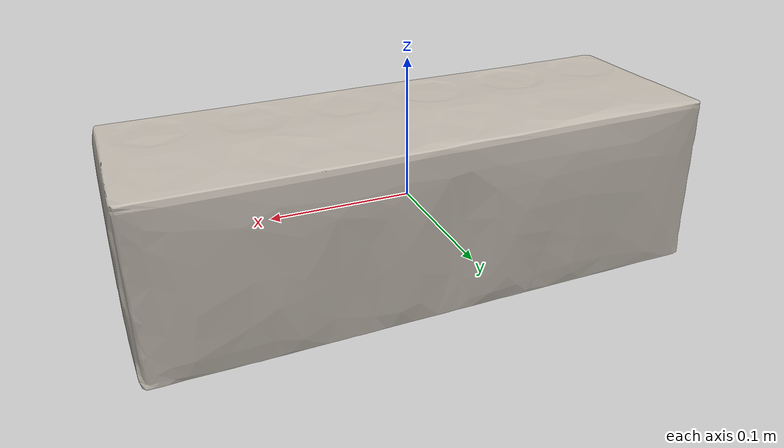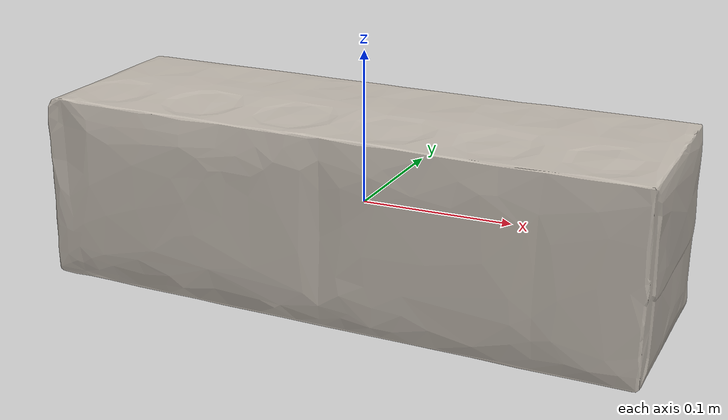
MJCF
<mujoco model="05">
  <default>
    <default class="05/visual">
      <geom group="2" type="mesh" contype="0" conaffinity="0"/>
    </default>
    <default class="05/collision">
      <geom group="3" type="mesh"/>
    </default>
  </default>
  <asset>
    <texture type="2d" name="img5" file="objects/05/img5.png"/>
    <material name="material_0.005" texture="img5" specular="0.0" shininess="0.0"/>
    <mesh file="objects/05/05.obj"/>
  </asset>
  <worldbody>
    <body name="05">
      <joint name="obj05" type="free"/>
      <geom material="material_0.005" mesh="05" class="05/visual"/>
      <geom mesh="05" class="05/collision" mass="0.5"/>
    </body>
  </worldbody>
</mujoco>
